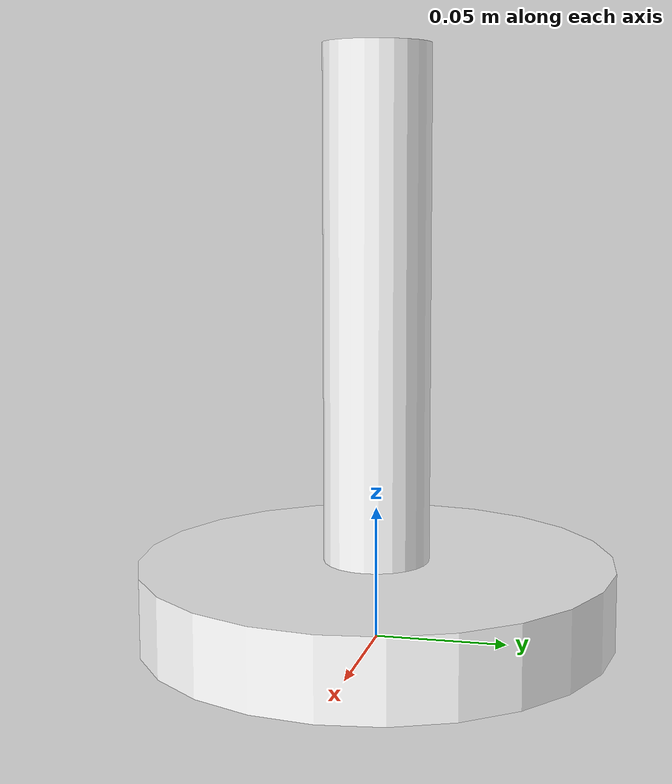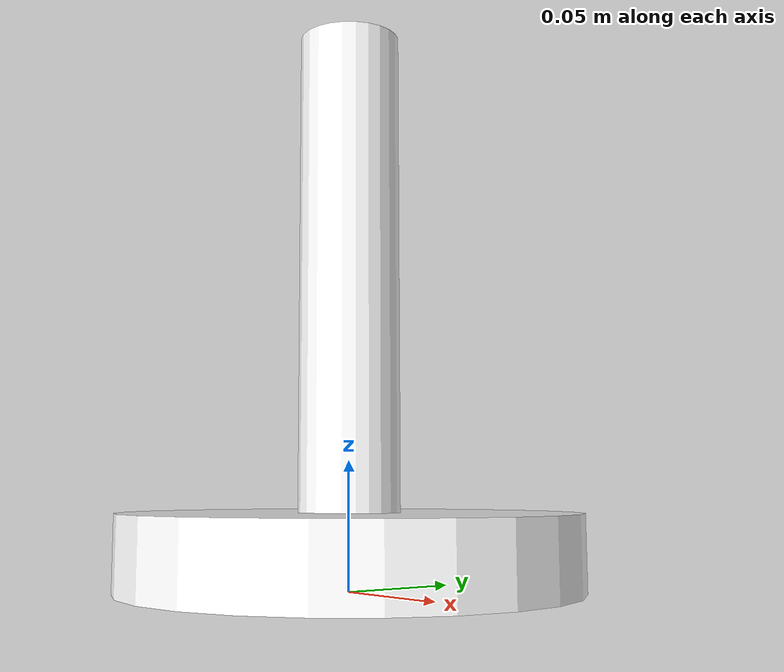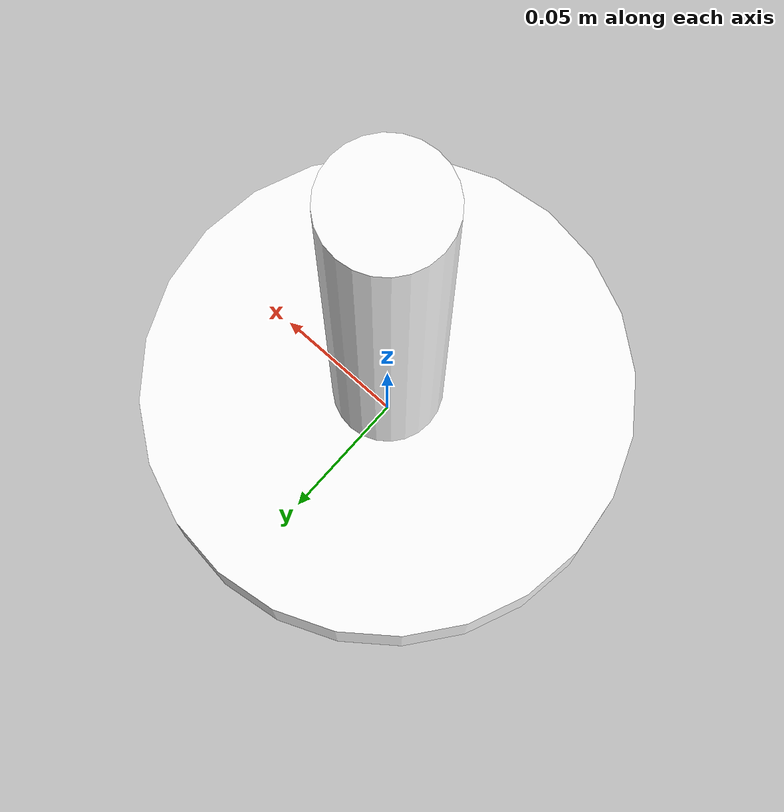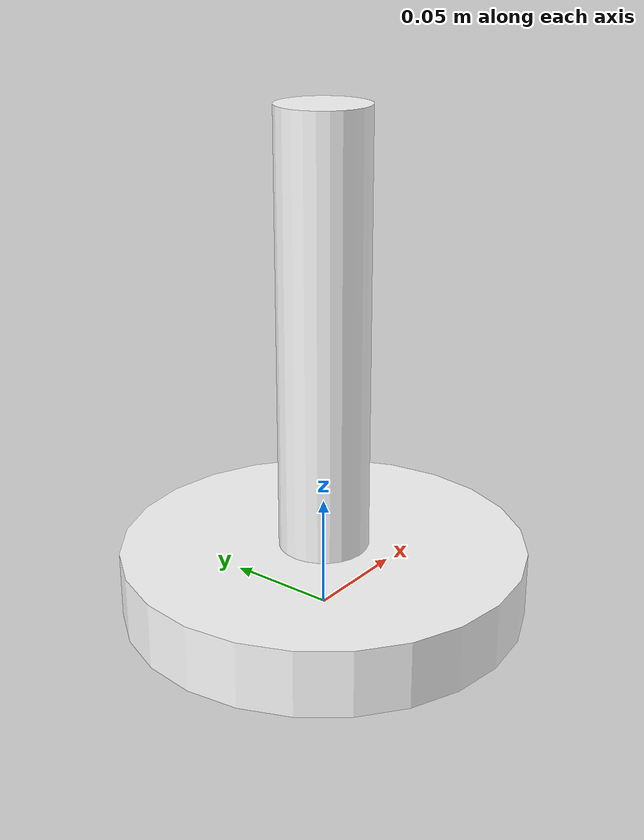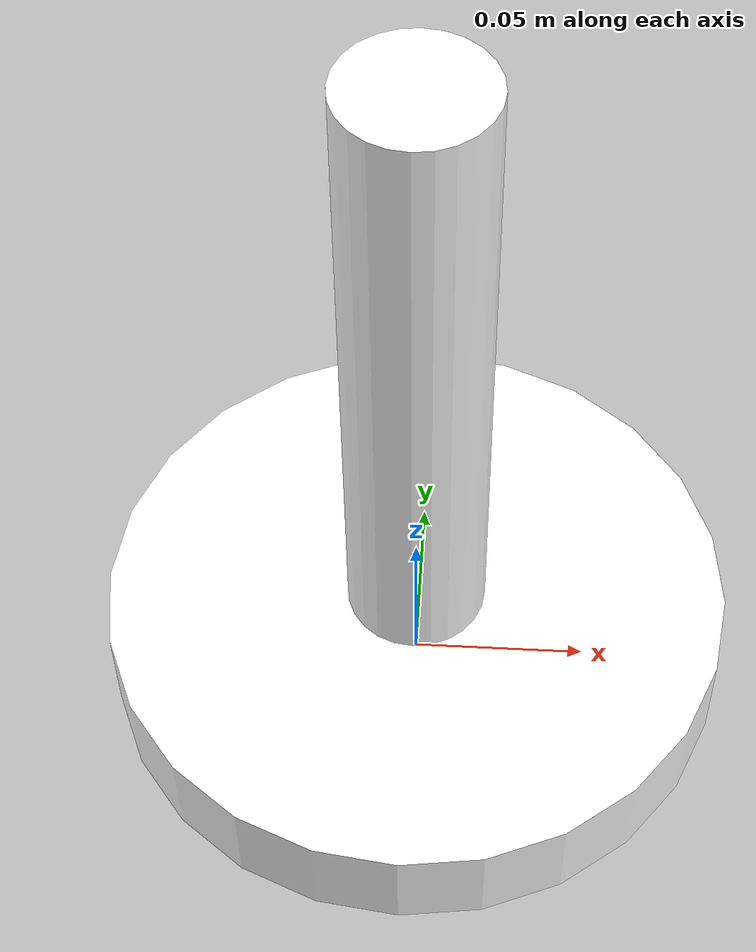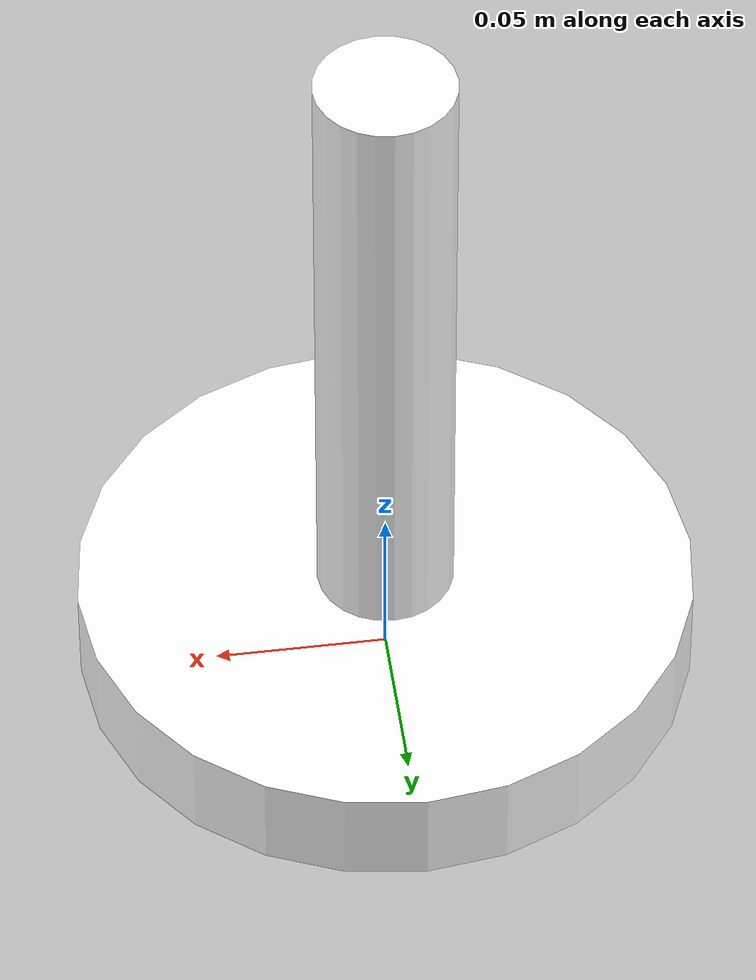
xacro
<?xml version="1.0"?>
<robot xmlns:xacro="http://www.ros.org/wiki/xacro" name="mini">

    <xacro:arg name="prefix" default="" />

    <xacro:arg name="initial_positions_file" default="initial_positions.yaml" />

    <xacro:include filename="$(find mini)/config/mini.urdf" />

    <!-- Import control_xacro -->
    <xacro:include filename="$(find mini)/config/mini.ros2_control.xacro" />

    <xacro:mini_ros2_control name="MiniSystemController" initial_positions_file="$(arg initial_positions_file)"/>

</robot>

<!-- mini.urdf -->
<robot name="mini">

    <material name="white">
        <color rgba="1 1 1 1"/>
    </material>

    <material name="red">
        <color rgba="1 0 0 1"/>
    </material>

    <link name="base_link">
        <visual>
          <origin rpy="0 0 0" xyz="0 0 0.015" />
          <geometry>
            <cylinder radius="0.09" length="0.03" />
          </geometry>

        <material name="white"/>
        </visual>

        <collision>
            <origin rpy="0 0 0" xyz="0 0 0.015" />
          <geometry>
            <cylinder radius="0.09" length="0.03" />
          </geometry>
          </collision>

    </link>

    <joint name="base_link__link_01" type="revolute">
        <axis xyz="0 0 1"/>
        <limit effort="1000.0" lower="-3.14" upper="3.14" velocity="0.5"/>
        <origin rpy="1.57 0 0" xyz="0 0 0.03"/>
        <parent link="base_link"/>
        <child link="link_01"/>

    </joint>

    <link name="link_01">
        <visual>
            <origin rpy="1.57 0 0" xyz="0 0.096 0" />
            <geometry>
                <cylinder radius="0.02" length="0.192" />
            </geometry>
            <material name="white"/>

        </visual>

        <collision>
            <origin rpy="0 0 0" xyz="0 0 0.096" />
            <geometry>
                <cylinder radius="0.02" length="0.192" />
            </geometry>
          </collision>

    </link>

</robot>
